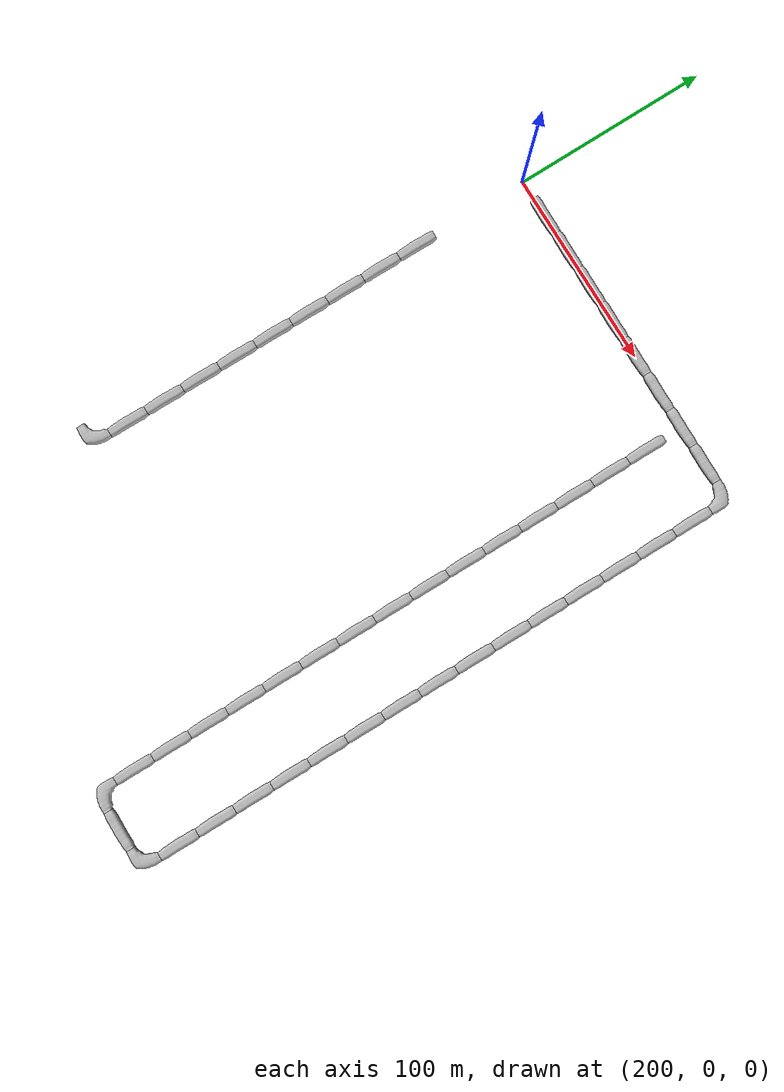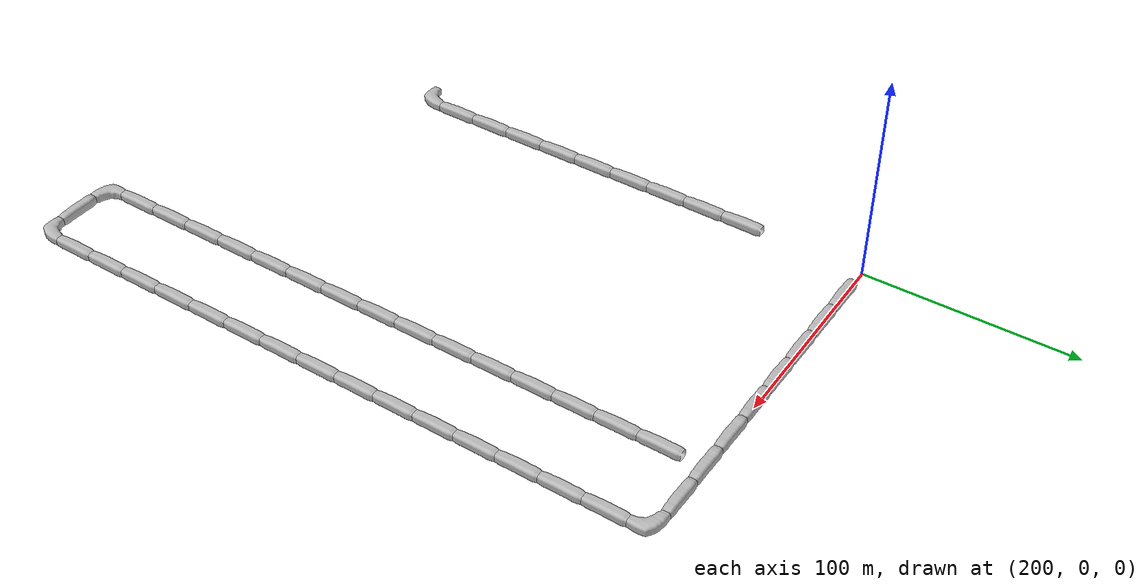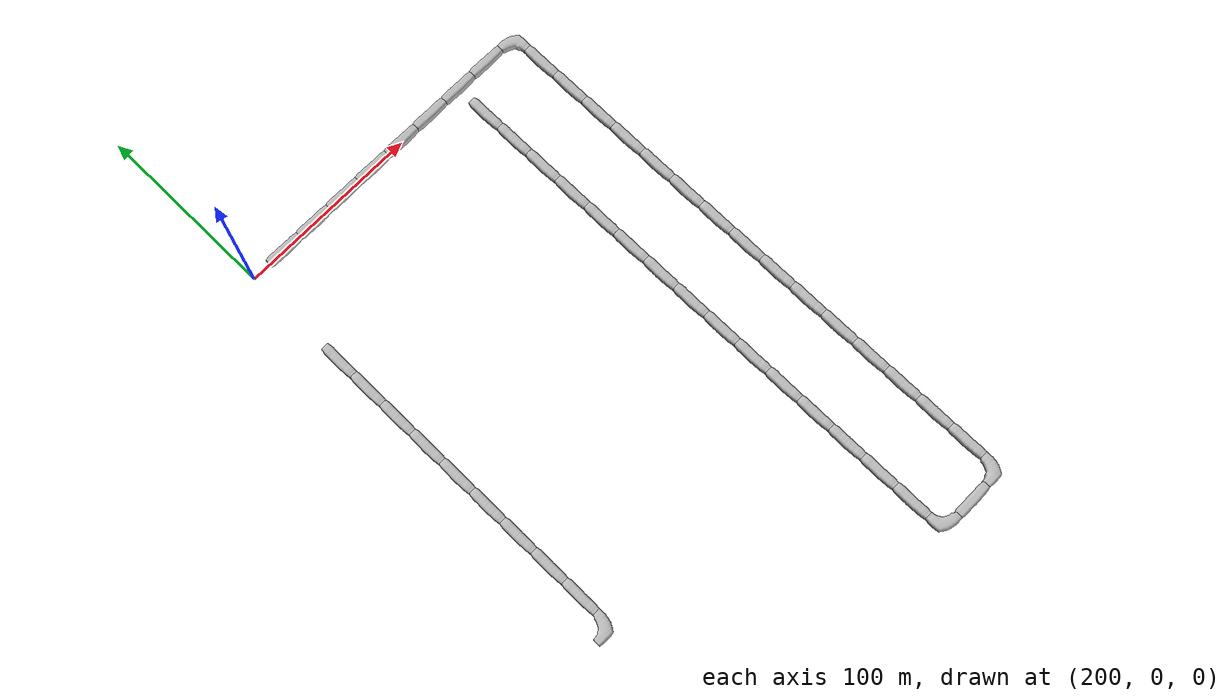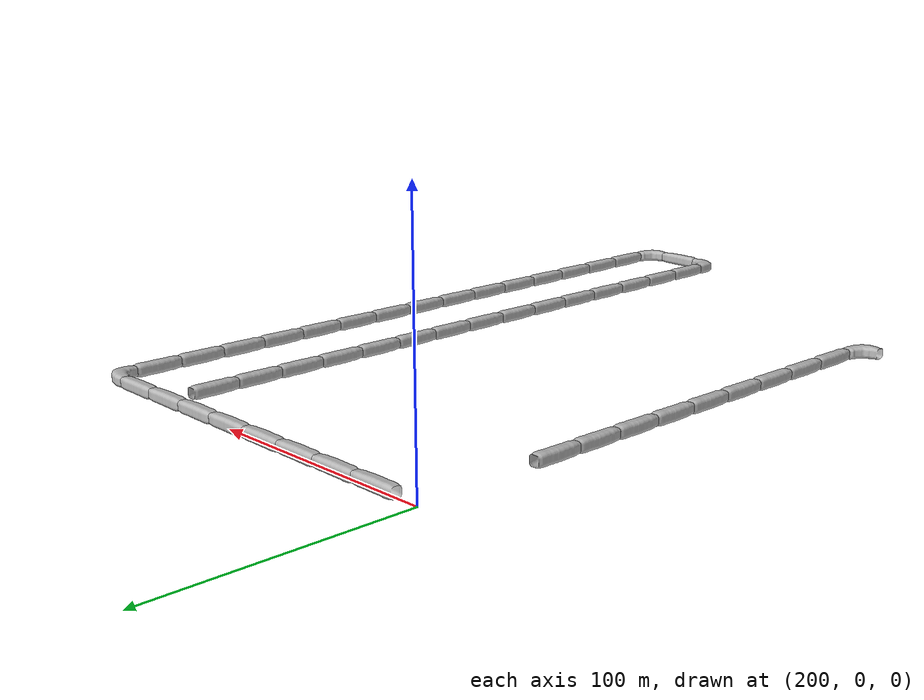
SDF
<sdf version="1.6">
 <world name="cave_4000_64">
  <include>
   <static>true</static>
   <name>cave_11_0</name>
   <pose>220 0 0 0 0 1.5707963267948966</pose>
   <uri>model://cave_straight_20m</uri>
  </include>
  <include>
   <static>true</static>
   <name>cave_12_0</name>
   <pose>240 0 0 0 0 1.5707963267948966</pose>
   <uri>model://cave_straight_20m</uri>
  </include>
  <include>
   <static>true</static>
   <name>cave_13_0</name>
   <pose>260 0 0 0 0 1.5707963267948966</pose>
   <uri>model://cave_straight_20m</uri>
  </include>
  <include>
   <static>true</static>
   <name>cave_14_0</name>
   <pose>280 0 0 0 0 1.5707963267948966</pose>
   <uri>model://cave_straight_20m</uri>
  </include>
  <include>
   <static>true</static>
   <name>cave_15_0</name>
   <pose>300 0 0 0 0 1.5707963267948966</pose>
   <uri>model://cave_straight_20m</uri>
  </include>
  <include>
   <static>true</static>
   <name>cave_16_0</name>
   <pose>320 0 0 0 0 1.5707963267948966</pose>
   <uri>model://cave_straight_20m</uri>
  </include>
  <include>
   <static>true</static>
   <name>cave_17_0</name>
   <pose>340 0 0 0 0 1.5707963267948966</pose>
   <uri>model://cave_straight_20m</uri>
  </include>
  <include>
   <static>true</static>
   <name>cave_18_0</name>
   <pose>360 0 0 0 0 1.5707963267948966</pose>
   <uri>model://cave_straight_20m</uri>
  </include>
  <include>
   <static>true</static>
   <name>cave_19_0</name>
   <pose>380 0 0 0 0 3.141592653589793</pose>
   <uri>model://cave_L_20m</uri>
  </include>
  <include>
   <static>true</static>
   <name>cave_19_-1</name>
   <pose>380 -20 0 0 0 0.0</pose>
   <uri>model://cave_straight_20m</uri>
  </include>
  <include>
   <static>true</static>
   <name>cave_19_-2</name>
   <pose>380 -40 0 0 0 0.0</pose>
   <uri>model://cave_straight_20m</uri>
  </include>
  <include>
   <static>true</static>
   <name>cave_19_-3</name>
   <pose>380 -60 0 0 0 0.0</pose>
   <uri>model://cave_straight_20m</uri>
  </include>
  <include>
   <static>true</static>
   <name>cave_19_-4</name>
   <pose>380 -80 0 0 0 0.0</pose>
   <uri>model://cave_straight_20m</uri>
  </include>
  <include>
   <static>true</static>
   <name>cave_19_-5</name>
   <pose>380 -100 0 0 0 0.0</pose>
   <uri>model://cave_straight_20m</uri>
  </include>
  <include>
   <static>true</static>
   <name>cave_19_-6</name>
   <pose>380 -120 0 0 0 0.0</pose>
   <uri>model://cave_straight_20m</uri>
  </include>
  <include>
   <static>true</static>
   <name>cave_19_-7</name>
   <pose>380 -140 0 0 0 0.0</pose>
   <uri>model://cave_straight_20m</uri>
  </include>
  <include>
   <static>true</static>
   <name>cave_19_-8</name>
   <pose>380 -160 0 0 0 0.0</pose>
   <uri>model://cave_straight_20m</uri>
  </include>
  <include>
   <static>true</static>
   <name>cave_19_-9</name>
   <pose>380 -180 0 0 0 0.0</pose>
   <uri>model://cave_straight_20m</uri>
  </include>
  <include>
   <static>true</static>
   <name>cave_19_-10</name>
   <pose>380 -200 0 0 0 0.0</pose>
   <uri>model://cave_straight_20m</uri>
  </include>
  <include>
   <static>true</static>
   <name>cave_19_-11</name>
   <pose>380 -220 0 0 0 0.0</pose>
   <uri>model://cave_straight_20m</uri>
  </include>
  <include>
   <static>true</static>
   <name>cave_19_-12</name>
   <pose>380 -240 0 0 0 0.0</pose>
   <uri>model://cave_straight_20m</uri>
  </include>
  <include>
   <static>true</static>
   <name>cave_19_-13</name>
   <pose>380 -260 0 0 0 0.0</pose>
   <uri>model://cave_straight_20m</uri>
  </include>
  <include>
   <static>true</static>
   <name>cave_19_-14</name>
   <pose>380 -280 0 0 0 0.0</pose>
   <uri>model://cave_straight_20m</uri>
  </include>
  <include>
   <static>true</static>
   <name>cave_19_-15</name>
   <pose>380 -300 0 0 0 0.0</pose>
   <uri>model://cave_straight_20m</uri>
  </include>
  <include>
   <static>true</static>
   <name>cave_19_-16</name>
   <pose>380 -320 0 0 0 1.5707963267948966</pose>
   <uri>model://cave_L_20m</uri>
  </include>
  <include>
   <static>true</static>
   <name>cave_18_-16</name>
   <pose>360 -320 0 0 0 1.5707963267948966</pose>
   <uri>model://cave_straight_20m</uri>
  </include>
  <include>
   <static>true</static>
   <name>cave_17_-16</name>
   <pose>340 -320 0 0 0 0.0</pose>
   <uri>model://cave_L_20m</uri>
  </include>
  <include>
   <static>true</static>
   <name>cave_17_-15</name>
   <pose>340 -300 0 0 0 0.0</pose>
   <uri>model://cave_straight_20m</uri>
  </include>
  <include>
   <static>true</static>
   <name>cave_17_-14</name>
   <pose>340 -280 0 0 0 0.0</pose>
   <uri>model://cave_straight_20m</uri>
  </include>
  <include>
   <static>true</static>
   <name>cave_17_-13</name>
   <pose>340 -260 0 0 0 0.0</pose>
   <uri>model://cave_straight_20m</uri>
  </include>
  <include>
   <static>true</static>
   <name>cave_17_-12</name>
   <pose>340 -240 0 0 0 0.0</pose>
   <uri>model://cave_straight_20m</uri>
  </include>
  <include>
   <static>true</static>
   <name>cave_17_-11</name>
   <pose>340 -220 0 0 0 0.0</pose>
   <uri>model://cave_straight_20m</uri>
  </include>
  <include>
   <static>true</static>
   <name>cave_17_-10</name>
   <pose>340 -200 0 0 0 0.0</pose>
   <uri>model://cave_straight_20m</uri>
  </include>
  <include>
   <static>true</static>
   <name>cave_17_-9</name>
   <pose>340 -180 0 0 0 0.0</pose>
   <uri>model://cave_straight_20m</uri>
  </include>
  <include>
   <static>true</static>
   <name>cave_17_-8</name>
   <pose>340 -160 0 0 0 0.0</pose>
   <uri>model://cave_straight_20m</uri>
  </include>
  <include>
   <static>true</static>
   <name>cave_17_-7</name>
   <pose>340 -140 0 0 0 0.0</pose>
   <uri>model://cave_straight_20m</uri>
  </include>
  <include>
   <static>true</static>
   <name>cave_17_-6</name>
   <pose>340 -120 0 0 0 0.0</pose>
   <uri>model://cave_straight_20m</uri>
  </include>
  <include>
   <static>true</static>
   <name>cave_17_-5</name>
   <pose>340 -100 0 0 0 0.0</pose>
   <uri>model://cave_straight_20m</uri>
  </include>
  <include>
   <static>true</static>
   <name>cave_17_-4</name>
   <pose>340 -80 0 0 0 0.0</pose>
   <uri>model://cave_straight_20m</uri>
  </include>
  <include>
   <static>true</static>
   <name>cave_17_-3</name>
   <pose>340 -60 0 0 0 0.0</pose>
   <uri>model://cave_straight_20m</uri>
  </include>
  <include>
   <static>true</static>
   <name>cave_17_-2</name>
   <pose>340 -40 0 0 0 0.0</pose>
   <uri>model://cave_straight_20m</uri>
  </include>
  <include>
   <static>true</static>
   <name>cave_17_-1</name>
   <pose>340 -20 0 0 0 0.0</pose>
   <uri>model://cave_straight_20m</uri>
  </include>
  <include>
   <static>true</static>
   <name>cave_10_-3</name>
   <pose>200 -60 0 0 0 0.0</pose>
   <uri>model://cave_straight_20m</uri>
  </include>
  <include>
   <static>true</static>
   <name>cave_10_-4</name>
   <pose>200 -80 0 0 0 0.0</pose>
   <uri>model://cave_straight_20m</uri>
  </include>
  <include>
   <static>true</static>
   <name>cave_10_-5</name>
   <pose>200 -100 0 0 0 0.0</pose>
   <uri>model://cave_straight_20m</uri>
  </include>
  <include>
   <static>true</static>
   <name>cave_10_-6</name>
   <pose>200 -120 0 0 0 0.0</pose>
   <uri>model://cave_straight_20m</uri>
  </include>
  <include>
   <static>true</static>
   <name>cave_10_-7</name>
   <pose>200 -140 0 0 0 0.0</pose>
   <uri>model://cave_straight_20m</uri>
  </include>
  <include>
   <static>true</static>
   <name>cave_10_-8</name>
   <pose>200 -160 0 0 0 0.0</pose>
   <uri>model://cave_straight_20m</uri>
  </include>
  <include>
   <static>true</static>
   <name>cave_10_-9</name>
   <pose>200 -180 0 0 0 0.0</pose>
   <uri>model://cave_straight_20m</uri>
  </include>
  <include>
   <static>true</static>
   <name>cave_10_-10</name>
   <pose>200 -200 0 0 0 0.0</pose>
   <uri>model://cave_straight_20m</uri>
  </include>
  <include>
   <static>true</static>
   <name>cave_10_-11</name>
   <pose>200 -220 0 0 0 0.0</pose>
   <uri>model://cave_straight_20m</uri>
  </include>
  <include>
   <static>true</static>
   <name>cave_10_-12</name>
   <pose>200 -240 0 0 0 1.5707963267948966</pose>
   <uri>model://cave_L_20m</uri>
  </include>
 </world>
</sdf>
